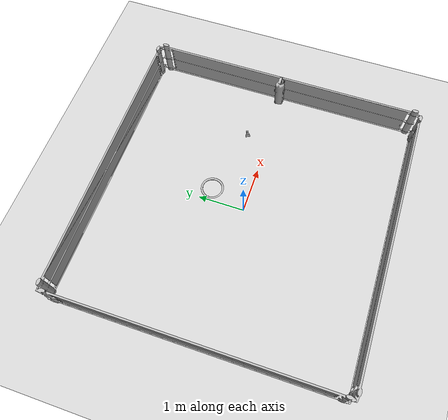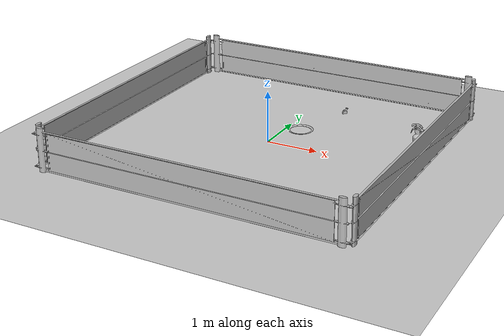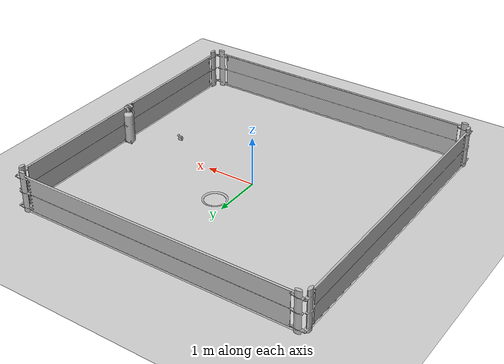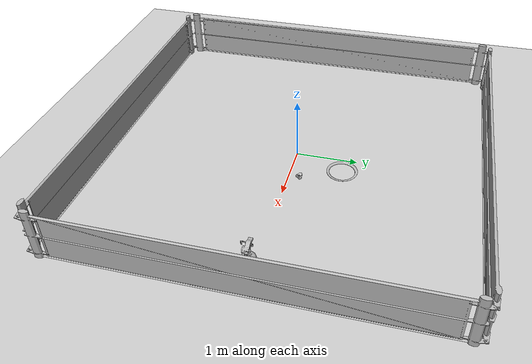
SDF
<sdf version="1.4">
 <world name="default">
  <include><uri>model://ground_plane</uri></include>
  <include><uri>model://sun</uri></include>
  <include><uri>model://trash_bin</uri><pose>0.0 0.6 -0.4 0 0 0</pose></include>
  <include><uri>model://e_stop</uri><pose>1.45 0.35 0.69 0 0 1.57079</pose></include>
  <include><uri>model://fence</uri><pose>0 -3.0 0.4 0 0 0</pose></include>
  <include><uri>model://fence</uri><pose>0 3.0 0.4 0 0 0</pose></include>
  <include><uri>model://fence</uri><pose>3.0 0 0.4 0 0 1.5707</pose></include>
  <include><uri>model://fence</uri><pose>-3.0 0 0.4 0 0 1.5707</pose></include>
  <include><uri>model://fire_exting</uri><pose>2.9 0.1 0.0 0 0 1.5707</pose></include>
 </world>
</sdf>

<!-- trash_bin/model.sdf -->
<sdf version="1.5">
  <model name="trash_bin">
    <link name="link">
      <inertial>
        <mass>15</mass>
        <inertia>
          <ixx>0.0</ixx>
          <ixy>0.0</ixy>
          <ixz>0.0</ixz>
          <iyy>0.0</iyy>
          <iyz>0.0</iyz>
          <izz>0.1</izz>
        </inertia>
      </inertial>
      <collision name="collision">
        <pose>-0.0 0.0 0.0 0.0 0.0 0.0</pose>
        <geometry>
          <mesh>
            <uri>model://trash_bin/meshes/short_bin.stl</uri>

          </mesh>
        </geometry>
      </collision>
      <visual name="visual">
        <pose>0.0 0.0 0.0 0.0 0.0 0.0</pose>
        <geometry>
          <mesh>
            <uri>model://trash_bin/meshes/short_bin.stl</uri>
   	    <scale> 1.0 1.0 1.0 </scale>
          </mesh>
        </geometry>
      </visual>
    </link>
    <static>1</static>
  </model>
</sdf>

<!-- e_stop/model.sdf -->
<sdf version="1.5">
  <model name="e_stop">

  <material name="WHITE_MTL">
    <color rgba="0.0 1.0 0.0 1.0"/> <!-- rviz green color -->
  </material>

    <link name="link">
      <inertial>
        <mass>15</mass>
        <inertia>
          <ixx>0.0</ixx>
          <ixy>0.0</ixy>
          <ixz>0.0</ixz>
          <iyy>0.0</iyy>
          <iyz>0.0</iyz>
          <izz>0.1</izz>
        </inertia>
      </inertial>
      <collision name="collision">
        <pose>-0.0 0.0 0.0 0.0 0.0 0.5</pose>
        <geometry>
          <mesh>
            <uri>model://e_stop/meshes/button.stl</uri>

          </mesh>
        </geometry>
      </collision>
      <!--visual name="visual"-->
	<visual>
        <pose>0.0 0.0 0.0 0.0 0.0 0.5</pose>
        <geometry>
          <mesh>
            <uri>model://e_stop/meshes/button.stl</uri>
   	    <scale> 1.0 1.0 1.0 </scale>
          </mesh>
        </geometry>
         <material>
          </material>
      </visual>
    </link>
    <static>1</static>
  </model>
</sdf>

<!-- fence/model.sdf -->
<sdf version="1.5">
  <model name="fence">
    <link name="link">
      <inertial>
        <mass>15</mass>
        <inertia>
          <ixx>0.0</ixx>
          <ixy>0.0</ixy>
          <ixz>0.0</ixz>
          <iyy>0.0</iyy>
          <iyz>0.0</iyz>
          <izz>0.1</izz>
        </inertia>
      </inertial>
      <collision name="collision">
        <pose>-0.0 0.0 0.0 0.0 0.0 0.0</pose>
        <geometry>
          <mesh>
            <uri>model://fence/meshes/fence.stl</uri>

          </mesh>
        </geometry>
      </collision>
      <visual name="visual">
        <pose>0.0 0.0 0.0 0.0 0.0 0.0</pose>
        <geometry>
          <mesh>
            <uri>model://fence/meshes/fence.stl</uri>
   	    <scale> 1.0 1.0 1.0 </scale>
          </mesh>
        </geometry>
      </visual>
    </link>
    <static>1</static>
  </model>
</sdf>

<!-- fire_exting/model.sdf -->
<sdf version="1.5">
  <model name="trash_bin">
    <link name="link">
      <inertial>
        <mass>15</mass>
        <inertia>
          <ixx>0.0</ixx>
          <ixy>0.0</ixy>
          <ixz>0.0</ixz>
          <iyy>0.0</iyy>
          <iyz>0.0</iyz>
          <izz>0.1</izz>
        </inertia>
      </inertial>
      <collision name="collision">
        <pose>-0.0 0.0 0.0 0.0 0.0 0.0</pose>
        <geometry>
          <mesh>
            <uri>model://fire_exting/meshes/fire_exting.stl</uri>

          </mesh>
        </geometry>
      </collision>
      <visual name="visual">
        <pose>0.0 0.0 0.0 0.0 0.0 0.0</pose>
        <geometry>
          <mesh>
            <uri>model://fire_exting/meshes/fire_exting.stl</uri>
   	    <scale> 1.0 1.0 1.0 </scale>
          </mesh>
        </geometry>
      </visual>
    </link>
    <static>1</static>
  </model>
</sdf>
